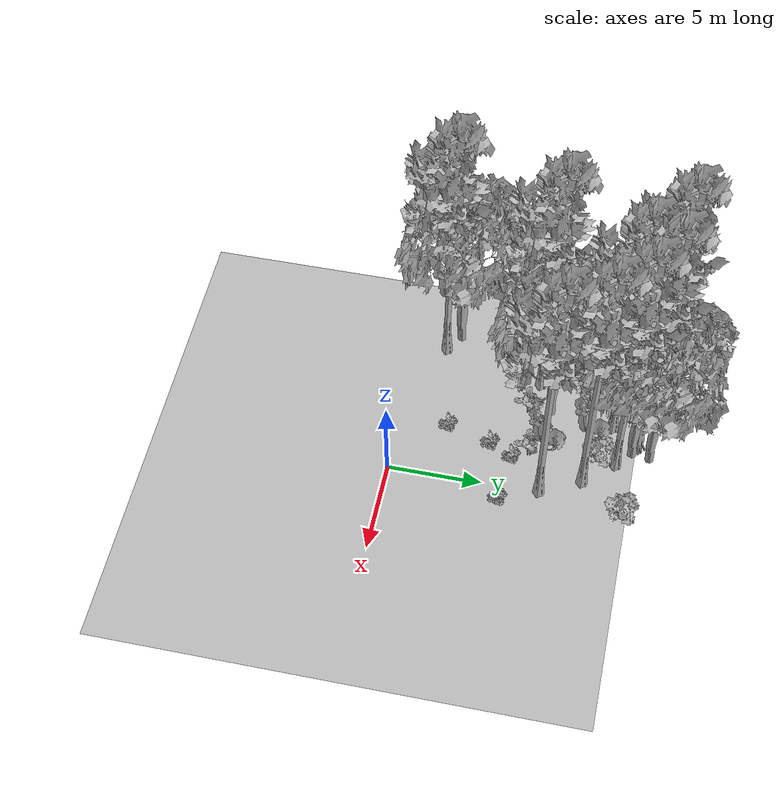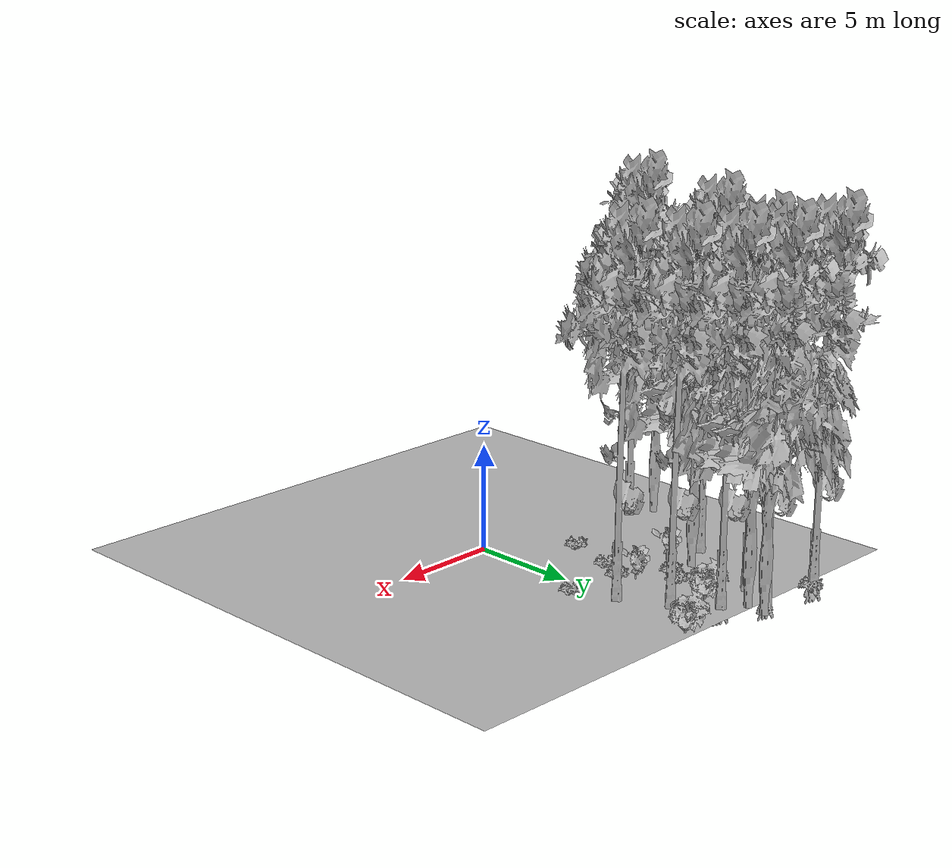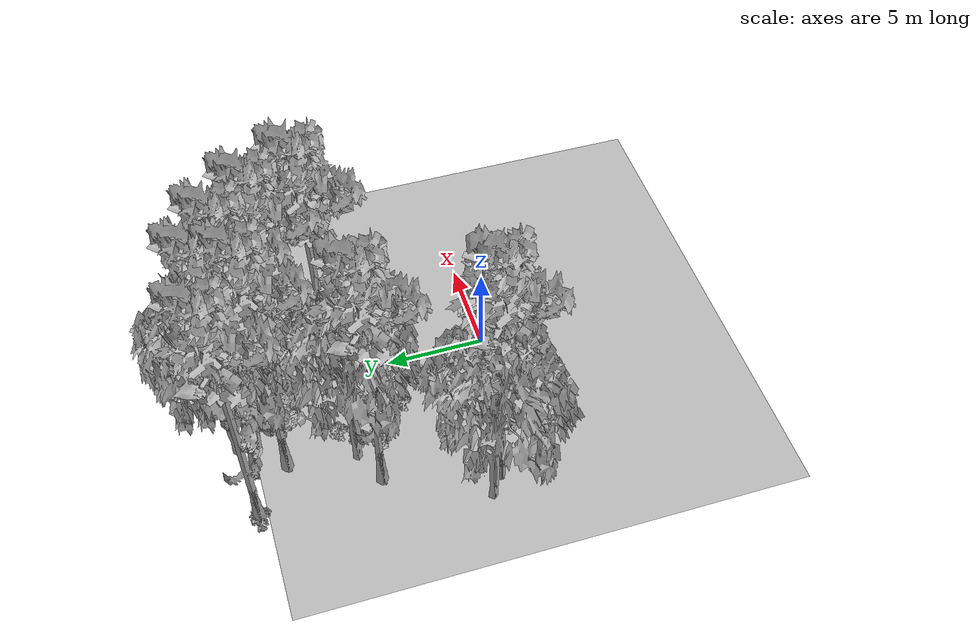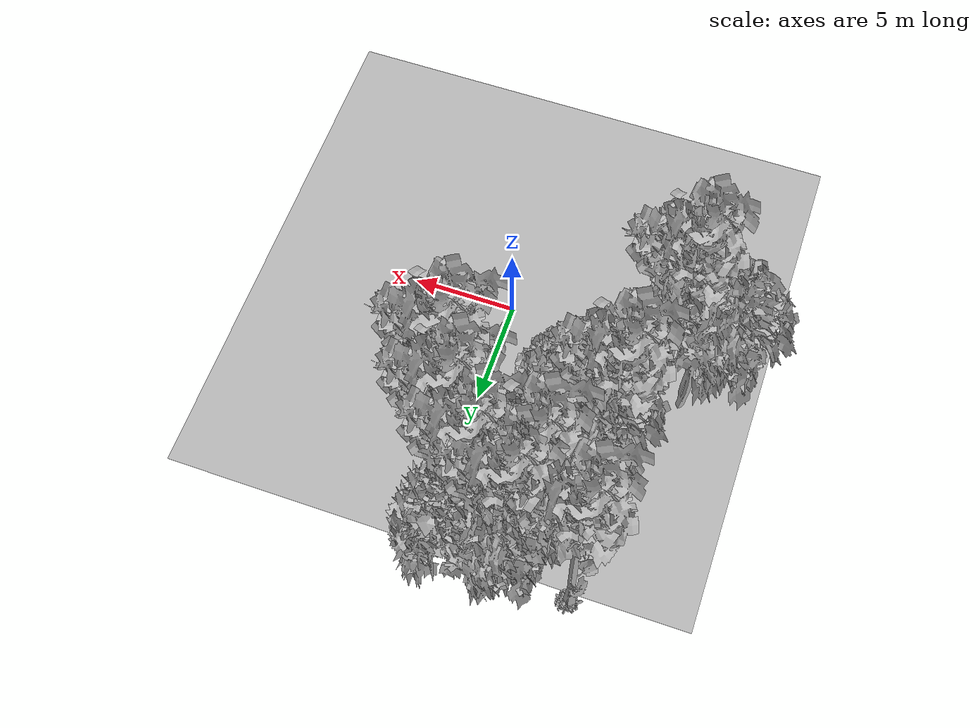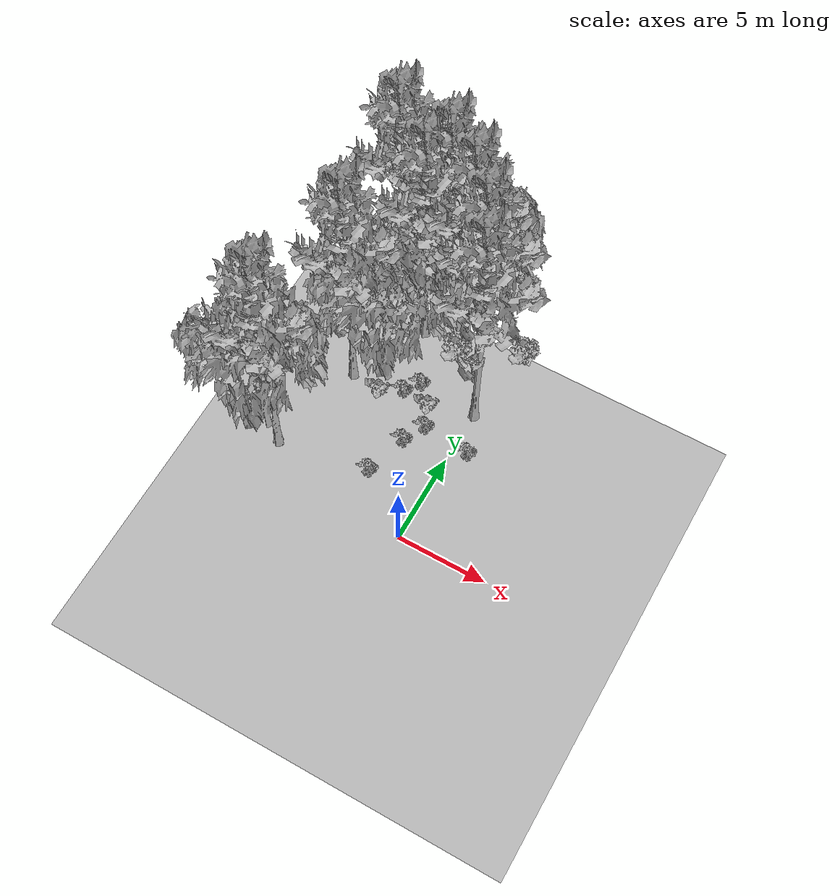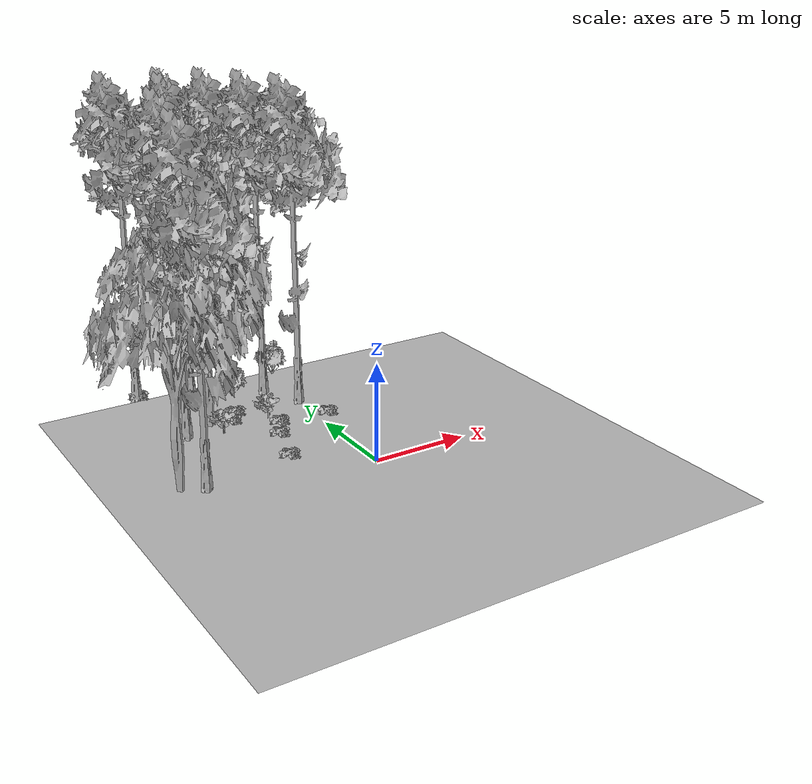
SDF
<sdf version="1.7">
 <world name="default">
  <model name="ground_plane">
   <static>1</static>
   <link name="link">
    <collision name="collision">
     <pose>-50 0 0 0 -0 0</pose>
     <geometry><plane><normal>0 0 1</normal><size>80 80</size></plane></geometry>
     <surface><contact><ode><min_depth>0.01</min_depth><max_vel>0</max_vel></ode></contact></surface>
    </collision>
    <visual name="grass">
     <cast_shadows>0</cast_shadows>
     <geometry>
      <mesh>
       <scale>0.46714285714285714 0.46714285714285714 0.1</scale>
       <uri>file://grass_plane/meshes/grass_plane.dae</uri>
      </mesh>
     </geometry>
    </visual>
   </link>
  </model>
  <model name="Tree 56">
   <static>1</static>
   <pose>-0.9899359926704392 10.102278593728315 0 1.57079 -0 0</pose>
   <link name="link">
    <collision name="collision">
     <geometry><mesh><scale>3.5 5 3.5</scale><uri>model://tree_9/meshes/tree_9.obj</uri></mesh></geometry>
    </collision>
    <visual name="visual">
     <geometry><mesh><scale>3.5 5 3.5</scale><uri>model://tree_9/meshes/tree_9.obj</uri></mesh></geometry>
    </visual>
   </link>
  </model>
  <model name="Tree 68">
   <static>1</static>
   <pose>-3.2546605916569504 13.344992399489612 0 1.57079 -0 0</pose>
   <link name="link">
    <collision name="collision">
     <geometry><mesh><scale>3.5 5 3.5</scale><uri>model://tree_2/meshes/tree_2.obj</uri></mesh></geometry>
    </collision>
    <visual name="visual">
     <geometry><mesh><scale>3.5 5 3.5</scale><uri>model://tree_2/meshes/tree_2.obj</uri></mesh></geometry>
    </visual>
   </link>
  </model>
  <model name="Tree 218">
   <static>1</static>
   <pose>-8.141719357065071 1.5946372115337866 0 1.57079 -0 0</pose>
   <link name="link">
    <collision name="collision">
     <geometry><mesh><scale>3.5 5 3.5</scale><uri>model://tree_9/meshes/tree_9.obj</uri></mesh></geometry>
    </collision>
    <visual name="visual">
     <geometry><mesh><scale>3.5 5 3.5</scale><uri>model://tree_9/meshes/tree_9.obj</uri></mesh></geometry>
    </visual>
   </link>
  </model>
  <model name="Tree 235">
   <static>1</static>
   <pose>-4.726161893410186 11.224353073109498 0 1.57079 -0 0</pose>
   <link name="link">
    <collision name="collision">
     <geometry><mesh><scale>3.5 5 3.5</scale><uri>model://tree_9/meshes/tree_9.obj</uri></mesh></geometry>
    </collision>
    <visual name="visual">
     <geometry><mesh><scale>3.5 5 3.5</scale><uri>model://tree_9/meshes/tree_9.obj</uri></mesh></geometry>
    </visual>
   </link>
  </model>
  <model name="Tree 237">
   <static>1</static>
   <pose>-9.266212368817708 2.209874921186824 0 1.57079 -0 0</pose>
   <link name="link">
    <collision name="collision">
     <geometry><mesh><scale>3.5 5 3.5</scale><uri>model://tree_2/meshes/tree_2.obj</uri></mesh></geometry>
    </collision>
    <visual name="visual">
     <geometry><mesh><scale>3.5 5 3.5</scale><uri>model://tree_2/meshes/tree_2.obj</uri></mesh></geometry>
    </visual>
   </link>
  </model>
  <model name="Tree 317">
   <static>1</static>
   <pose>-5.239328624660317 7.829659767114961 0 1.57079 -0 0</pose>
   <link name="link">
    <collision name="collision">
     <geometry><mesh><scale>3.5 5 3.5</scale><uri>model://tree_2/meshes/tree_2.obj</uri></mesh></geometry>
    </collision>
    <visual name="visual">
     <geometry><mesh><scale>3.5 5 3.5</scale><uri>model://tree_2/meshes/tree_2.obj</uri></mesh></geometry>
    </visual>
   </link>
  </model>
  <model name="Tree 321">
   <static>1</static>
   <pose>-6.774619271268389 7.03870670941329 0 1.57079 -0 0</pose>
   <link name="link">
    <collision name="collision">
     <geometry><mesh><scale>3.5 5 3.5</scale><uri>model://tree_9/meshes/tree_9.obj</uri></mesh></geometry>
    </collision>
    <visual name="visual">
     <geometry><mesh><scale>3.5 5 3.5</scale><uri>model://tree_9/meshes/tree_9.obj</uri></mesh></geometry>
    </visual>
   </link>
  </model>
  <model name="Tree 329">
   <static>1</static>
   <pose>-7.12810544745162 13.020748752499301 0 1.57079 -0 0</pose>
   <link name="link">
    <collision name="collision">
     <geometry><mesh><scale>3.5 5 3.5</scale><uri>model://tree_9/meshes/tree_9.obj</uri></mesh></geometry>
    </collision>
    <visual name="visual">
     <geometry><mesh><scale>3.5 5 3.5</scale><uri>model://tree_9/meshes/tree_9.obj</uri></mesh></geometry>
    </visual>
   </link>
  </model>
  <model name="Tree 388">
   <static>1</static>
   <pose>-2.4029781835392967 11.674258641509141 0 1.57079 -0 0</pose>
   <link name="link">
    <collision name="collision">
     <geometry><mesh><scale>3.5 5 3.5</scale><uri>model://tree_9/meshes/tree_9.obj</uri></mesh></geometry>
    </collision>
    <visual name="visual">
     <geometry><mesh><scale>3.5 5 3.5</scale><uri>model://tree_9/meshes/tree_9.obj</uri></mesh></geometry>
    </visual>
   </link>
  </model>
  <model name="Tree 448">
   <static>1</static>
   <pose>-3.392694258110218 12.402332863652106 0 1.57079 -0 0</pose>
   <link name="link">
    <collision name="collision">
     <geometry><mesh><scale>3.5 5 3.5</scale><uri>model://tree_2/meshes/tree_2.obj</uri></mesh></geometry>
    </collision>
    <visual name="visual">
     <geometry><mesh><scale>3.5 5 3.5</scale><uri>model://tree_2/meshes/tree_2.obj</uri></mesh></geometry>
    </visual>
   </link>
  </model>
  <model name="Tree 455">
   <static>1</static>
   <pose>-4.221338547079867 12.686204171852964 0 1.57079 -0 0</pose>
   <link name="link">
    <collision name="collision">
     <geometry><mesh><scale>3.5 5 3.5</scale><uri>model://tree_9/meshes/tree_9.obj</uri></mesh></geometry>
    </collision>
    <visual name="visual">
     <geometry><mesh><scale>3.5 5 3.5</scale><uri>model://tree_9/meshes/tree_9.obj</uri></mesh></geometry>
    </visual>
   </link>
  </model>
  <model name="Tree 602">
   <static>1</static>
   <pose>0.054006760312141466 7.9978365469414 0 1.57079 -0 0</pose>
   <link name="link">
    <collision name="collision">
     <geometry><mesh><scale>3.5 5 3.5</scale><uri>model://tree_9/meshes/tree_9.obj</uri></mesh></geometry>
    </collision>
    <visual name="visual">
     <geometry><mesh><scale>3.5 5 3.5</scale><uri>model://tree_9/meshes/tree_9.obj</uri></mesh></geometry>
    </visual>
   </link>
  </model>
  <model name="Bush 23">
   <static>1</static>
   <pose>-3.4633924103745173 8.409890651999476 0 1.57079 -0 0</pose>
   <link name="link">
    <collision name="collision">
     <geometry><mesh><scale>2 2 2</scale><uri>model://bush_2/meshes/bush_2.obj</uri></mesh></geometry>
     <surface><contact><collide_without_contact>false</collide_without_contact></contact></surface>
    </collision>
    <visual name="visual">
     <geometry><mesh><scale>2 2 2</scale><uri>model://bush_2/meshes/bush_2.obj</uri></mesh></geometry>
    </visual>
   </link>
  </model>
  <model name="Bush 86">
   <static>1</static>
   <pose>-2.248797993289074 7.0882055875815695 0 1.57079 -0 0</pose>
   <link name="link">
    <collision name="collision">
     <geometry><mesh><scale>2 2 2</scale><uri>model://bush_0/meshes/bush_0.obj</uri></mesh></geometry>
     <surface><contact><collide_without_contact>false</collide_without_contact></contact></surface>
    </collision>
    <visual name="visual">
     <geometry><mesh><scale>2 2 2</scale><uri>model://bush_0/meshes/bush_0.obj</uri></mesh></geometry>
    </visual>
   </link>
  </model>
  <model name="Bush 99">
   <static>1</static>
   <pose>-2.6160786401487854 10.635595865233263 0 1.57079 -0 0</pose>
   <link name="link">
    <collision name="collision">
     <geometry><mesh><scale>2 2 2</scale><uri>model://bush_1/meshes/bush_1.obj</uri></mesh></geometry>
     <surface><contact><collide_without_contact>false</collide_without_contact></contact></surface>
    </collision>
    <visual name="visual">
     <geometry><mesh><scale>2 2 2</scale><uri>model://bush_1/meshes/bush_1.obj</uri></mesh></geometry>
    </visual>
   </link>
  </model>
  <model name="Bush 135">
   <static>1</static>
   <pose>-3.3329793509430985 2.5932397873133866 0 1.57079 -0 0</pose>
   <link name="link">
    <collision name="collision">
     <geometry><mesh><scale>2 2 2</scale><uri>model://bush_2/meshes/bush_2.obj</uri></mesh></geometry>
     <surface><contact><collide_without_contact>false</collide_without_contact></contact></surface>
    </collision>
    <visual name="visual">
     <geometry><mesh><scale>2 2 2</scale><uri>model://bush_2/meshes/bush_2.obj</uri></mesh></geometry>
    </visual>
   </link>
  </model>
  <model name="Bush 229">
   <static>1</static>
   <pose>-4.064335896109895 7.593605481802783 0 1.57079 -0 0</pose>
   <link name="link">
    <collision name="collision">
     <geometry><mesh><scale>2 2 2</scale><uri>model://bush_2/meshes/bush_2.obj</uri></mesh></geometry>
     <surface><contact><collide_without_contact>false</collide_without_contact></contact></surface>
    </collision>
    <visual name="visual">
     <geometry><mesh><scale>2 2 2</scale><uri>model://bush_2/meshes/bush_2.obj</uri></mesh></geometry>
    </visual>
   </link>
  </model>
  <model name="Bush 270">
   <static>1</static>
   <pose>-4.961546286638395 6.636583522085473 0 1.57079 -0 0</pose>
   <link name="link">
    <collision name="collision">
     <geometry><mesh><scale>2 2 2</scale><uri>model://bush_0/meshes/bush_0.obj</uri></mesh></geometry>
     <surface><contact><collide_without_contact>false</collide_without_contact></contact></surface>
    </collision>
    <visual name="visual">
     <geometry><mesh><scale>2 2 2</scale><uri>model://bush_0/meshes/bush_0.obj</uri></mesh></geometry>
    </visual>
   </link>
  </model>
  <model name="Bush 406">
   <static>1</static>
   <pose>-2.63664985832272 4.993141162738183 0 1.57079 -0 0</pose>
   <link name="link">
    <collision name="collision">
     <geometry><mesh><scale>2 2 2</scale><uri>model://bush_2/meshes/bush_2.obj</uri></mesh></geometry>
     <surface><contact><collide_without_contact>false</collide_without_contact></contact></surface>
    </collision>
    <visual name="visual">
     <geometry><mesh><scale>2 2 2</scale><uri>model://bush_2/meshes/bush_2.obj</uri></mesh></geometry>
    </visual>
   </link>
  </model>
  <model name="Bush 439">
   <static>1</static>
   <pose>-7.039933331983736 12.968356369761445 0 1.57079 -0 0</pose>
   <link name="link">
    <collision name="collision">
     <geometry><mesh><scale>2 2 2</scale><uri>model://bush_2/meshes/bush_2.obj</uri></mesh></geometry>
     <surface><contact><collide_without_contact>false</collide_without_contact></contact></surface>
    </collision>
    <visual name="visual">
     <geometry><mesh><scale>2 2 2</scale><uri>model://bush_2/meshes/bush_2.obj</uri></mesh></geometry>
    </visual>
   </link>
  </model>
  <model name="Bush 443">
   <static>1</static>
   <pose>-2.0050349004116583 6.228332333307669 0 1.57079 -0 0</pose>
   <link name="link">
    <collision name="collision">
     <geometry><mesh><scale>2 2 2</scale><uri>model://bush_2/meshes/bush_2.obj</uri></mesh></geometry>
     <surface><contact><collide_without_contact>false</collide_without_contact></contact></surface>
    </collision>
    <visual name="visual">
     <geometry><mesh><scale>2 2 2</scale><uri>model://bush_2/meshes/bush_2.obj</uri></mesh></geometry>
    </visual>
   </link>
  </model>
  <model name="Bush 548">
   <static>1</static>
   <pose>0.6890379949547452 5.955211748097611 0 1.57079 -0 0</pose>
   <link name="link">
    <collision name="collision">
     <geometry><mesh><scale>2 2 2</scale><uri>model://bush_2/meshes/bush_2.obj</uri></mesh></geometry>
     <surface><contact><collide_without_contact>false</collide_without_contact></contact></surface>
    </collision>
    <visual name="visual">
     <geometry><mesh><scale>2 2 2</scale><uri>model://bush_2/meshes/bush_2.obj</uri></mesh></geometry>
    </visual>
   </link>
  </model>
  <model name="Bush 588">
   <static>1</static>
   <pose>0.6318211279724011 12.252324889879063 0 1.57079 -0 0</pose>
   <link name="link">
    <collision name="collision">
     <geometry><mesh><scale>2 2 2</scale><uri>model://bush_1/meshes/bush_1.obj</uri></mesh></geometry>
     <surface><contact><collide_without_contact>false</collide_without_contact></contact></surface>
    </collision>
    <visual name="visual">
     <geometry><mesh><scale>2 2 2</scale><uri>model://bush_1/meshes/bush_1.obj</uri></mesh></geometry>
    </visual>
   </link>
  </model>
 </world>
</sdf>
